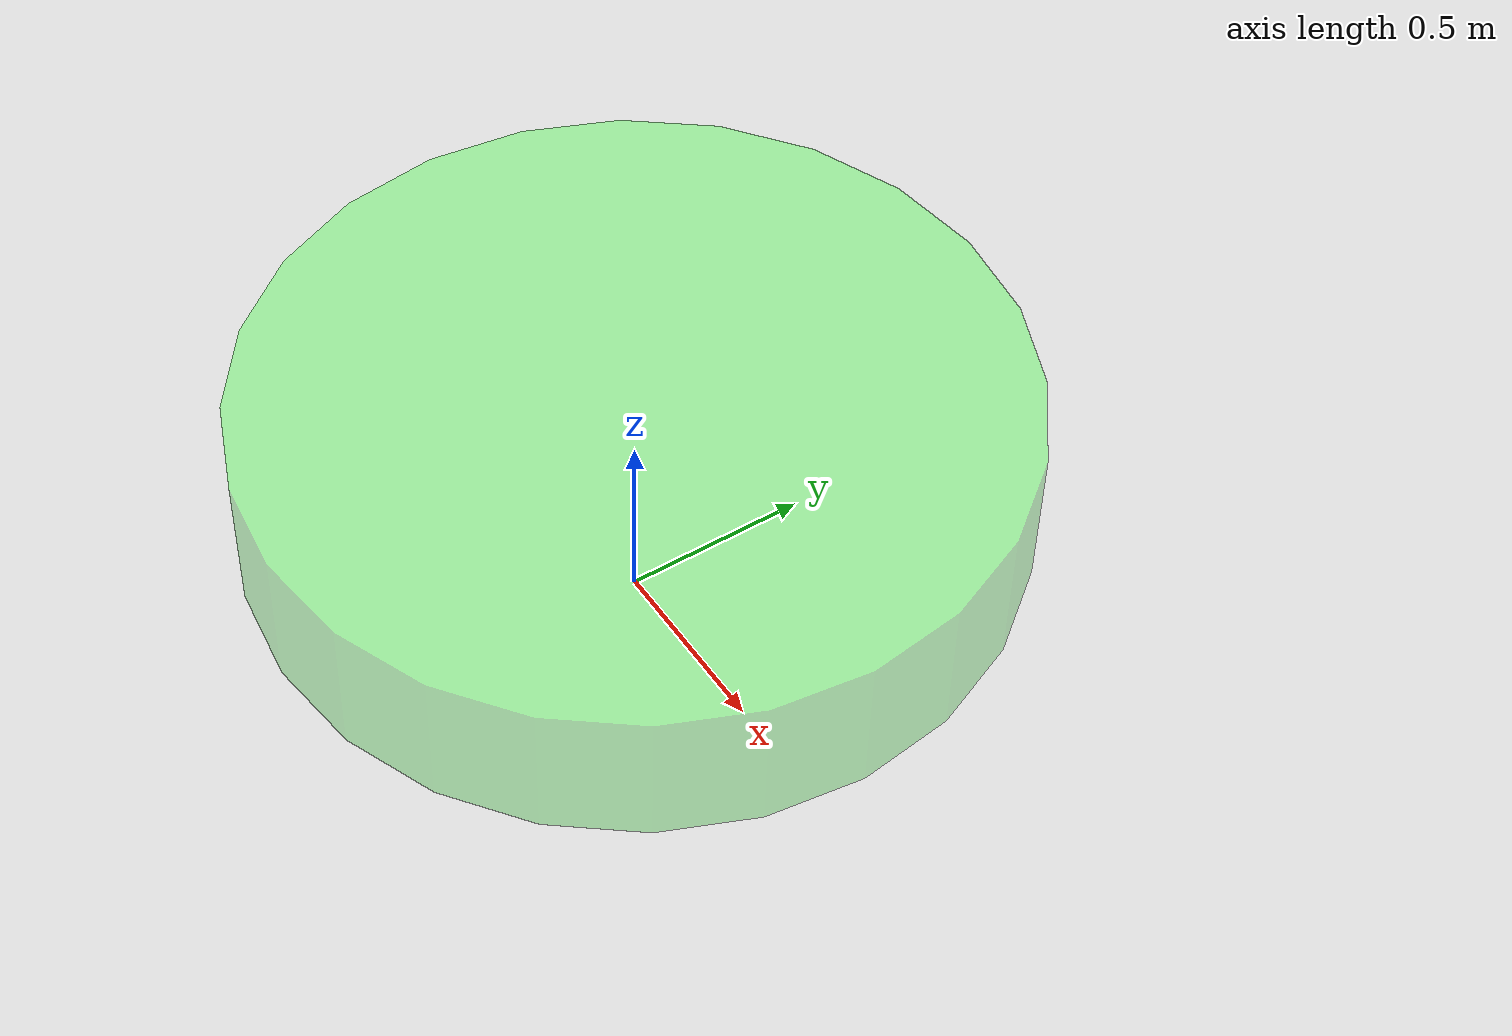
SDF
<?xml version='1.0'?>
<sdf version="1.4">
  <model name="dropoff_location_model">
    <pose>0 0 0.5 0 0 0</pose>
    <static>true</static>
    <link name="link">
      <visual name="visual">
        <geometry>
          <cylinder>
            <radius>1</radius>
            <length>0.4</length>
          </cylinder>
        </geometry>
        <material>
          <ambient>0 1 0 0.3</ambient>
          <diffuse>0 1 0 0.3</diffuse>
          <specular>0.1 0.1 0.1 1</specular>
          <emissive>0 0.3 0 0.1</emissive>
        </material>
      </visual>
    </link>
  </model>
</sdf>
